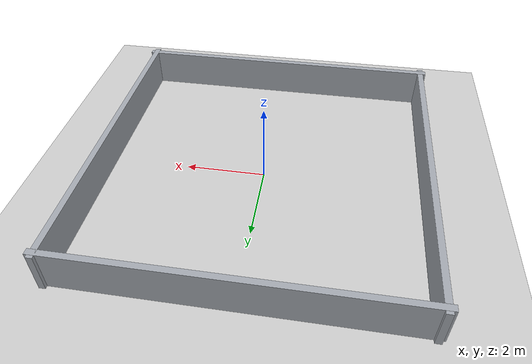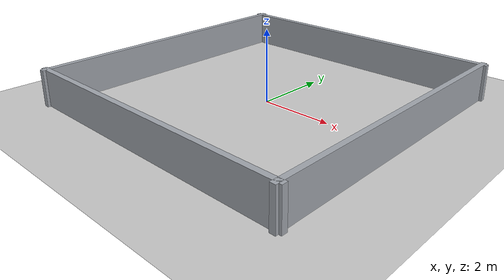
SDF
<sdf version="1.6">
 <world name="social_wall_1ped_opposite">
  <scene>
   <ambient>0.46 0.46 0.48 1</ambient>
   <background>0.93 0.96 1.0 1</background>
   <shadows>true</shadows>
  </scene>
  <include><uri>model://sun</uri></include>
  <include><uri>model://ground_plane</uri></include>
  <physics type="ode">
   <real_time_update_rate>0</real_time_update_rate>
   <max_step_size>0.001</max_step_size>
   <real_time_factor>1</real_time_factor>
   <ode>
    <solver>
     <type>quick</type>
     <iters>150</iters>
     <precon_iters>0</precon_iters>
     <sor>1.4</sor>
     <use_dynamic_moi_rescaling>1</use_dynamic_moi_rescaling>
    </solver>
    <constraints>
     <cfm>0.00001</cfm>
     <erp>0.2</erp>
     <contact_max_correcting_vel>2000.0</contact_max_correcting_vel>
     <contact_surface_layer>0.01</contact_surface_layer>
    </constraints>
   </ode>
  </physics>
  <model name="north_wall">
   <static>true</static>
   <pose>0 4.0 0.5 0 0 0</pose>
   <link name="link">
    <collision name="collision"><geometry><box><size>8.3 0.15 1.0</size></box></geometry></collision>
    <visual name="visual">
     <geometry><box><size>8.3 0.15 1.0</size></box></geometry>
     <material><ambient>0.56 0.57 0.60 1</ambient><diffuse>0.64 0.66 0.69 1</diffuse></material>
    </visual>
   </link>
  </model>
  <model name="south_wall">
   <static>true</static>
   <pose>0 -4.0 0.5 0 0 0</pose>
   <link name="link">
    <collision name="collision"><geometry><box><size>8.3 0.15 1.0</size></box></geometry></collision>
    <visual name="visual">
     <geometry><box><size>8.3 0.15 1.0</size></box></geometry>
     <material><ambient>0.56 0.57 0.60 1</ambient><diffuse>0.64 0.66 0.69 1</diffuse></material>
    </visual>
   </link>
  </model>
  <model name="west_wall">
   <static>true</static>
   <pose>-4.0 0 0.5 0 0 0</pose>
   <link name="link">
    <collision name="collision"><geometry><box><size>0.15 8.3 1.0</size></box></geometry></collision>
    <visual name="visual">
     <geometry><box><size>0.15 8.3 1.0</size></box></geometry>
     <material><ambient>0.56 0.57 0.60 1</ambient><diffuse>0.64 0.66 0.69 1</diffuse></material>
    </visual>
   </link>
  </model>
  <model name="east_wall">
   <static>true</static>
   <pose>4.0 0 0.5 0 0 0</pose>
   <link name="link">
    <collision name="collision"><geometry><box><size>0.15 8.3 1.0</size></box></geometry></collision>
    <visual name="visual">
     <geometry><box><size>0.15 8.3 1.0</size></box></geometry>
     <material><ambient>0.56 0.57 0.60 1</ambient><diffuse>0.64 0.66 0.69 1</diffuse></material>
    </visual>
   </link>
  </model>
 </world>
</sdf>
